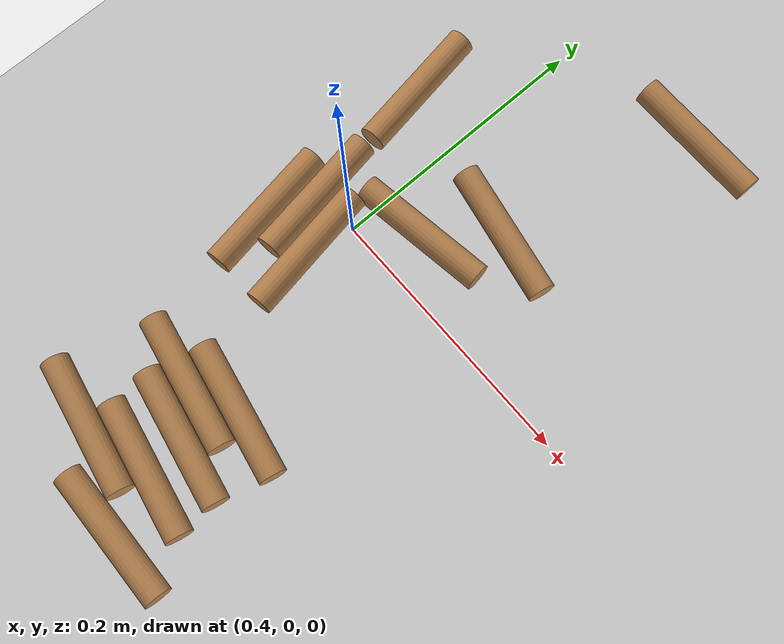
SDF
<sdf version="1.6">
 <world name="default">
  <light name="sun" type="directional">
   <pose>0 0 10 0 -0 0</pose>
   <diffuse>0.8 0.8 0.8 1</diffuse>
   <specular>0.2 0.2 0.2 1</specular>
   <attenuation>
    <range>1000</range>
    <constant>0.9</constant>
    <linear>0.01</linear>
    <quadratic>0.001</quadratic>
   </attenuation>
   <direction>-0.5 0.1 -0.9</direction>
  </light>
  <model name="ground_plane">
   <static>1</static>
   <link name="link">
    <collision name="collision">
     <geometry><plane><normal>0 0 1</normal><size>100 100</size></plane></geometry>
     <surface><friction><ode><mu>100</mu><mu2>50</mu2></ode></friction></surface>
    </collision>
    <visual name="visual">
     <cast_shadows>0</cast_shadows>
     <geometry><plane><normal>0 0 1</normal><size>100 100</size></plane></geometry>
     <material>
      <script><uri>file://media/materials/scripts/gazebo.material</uri><name>Gazebo/Grey</name></script>
     </material>
    </visual>
   </link>
  </model>
  <gravity>0 0 -9.8</gravity>
  <magnetic_field>6e-06 2.3e-05 -4.2e-05</magnetic_field>
  <atmosphere type="adiabatic"/>
  <physics name="default_physics" default="0" type="ode">
   <max_step_size>0.001</max_step_size>
   <real_time_factor>1</real_time_factor>
   <real_time_update_rate>1000</real_time_update_rate>
  </physics>
  <scene><ambient>0.4 0.4 0.4 1</ambient><background>0.7 0.7 0.7 1</background><shadows>1</shadows></scene>
  <audio><device>default</device></audio>
  <spherical_coordinates>
   <surface_model>EARTH_WGS84</surface_model>
   <latitude_deg>0</latitude_deg>
   <longitude_deg>0</longitude_deg>
   <elevation>0</elevation>
   <heading_deg>0</heading_deg>
  </spherical_coordinates>
  <model name="my wooden_peg">
   <link name="link">
    <pose>0 0 0.04 0 -0 0</pose>
    <inertial>
     <mass>0.0175</mass>
     <inertia>
      <ixx>9.74923e-06</ixx>
      <ixy>0</ixy>
      <ixz>0</ixz>
      <iyy>9.74923e-06</iyy>
      <iyz>0</iyz>
      <izz>8.31797e-07</izz>
     </inertia>
    </inertial>
    <collision name="collision">
     <geometry><cylinder><radius>0.01</radius><length>0.1</length></cylinder></geometry>
     <surface>
      <contact>
       <poissons_ratio>0.347</poissons_ratio>
       <elastic_modulus>8.8e+09</elastic_modulus>
       <ode><kp>100000</kp><kd>100</kd><max_vel>100</max_vel><min_depth>0.001</min_depth></ode>
      </contact>
      <friction>
       <torsional>
        <coefficient>1</coefficient>
        <use_patch_radius>0</use_patch_radius>
        <surface_radius>0.01</surface_radius>
       </torsional>
      </friction>
     </surface>
    </collision>
    <visual name="visual">
     <geometry><cylinder><radius>0.01</radius><length>0.1</length></cylinder></geometry>
     <material>
      <script><uri>file://media/materials/scripts/gazebo.material</uri><name>Gazebo/Wood</name></script>
     </material>
    </visual>
   </link>
   <pose>0.420257 -0.249869 0.014519 1.56971 -0.751768 1.54692</pose>
  </model>
  <model name="my wooden_peg_clone">
   <link name="link">
    <pose>0 0 0.04 0 -0 0</pose>
    <inertial>
     <mass>0.0175</mass>
     <inertia>
      <ixx>9.74923e-06</ixx>
      <ixy>0</ixy>
      <ixz>0</ixz>
      <iyy>9.74923e-06</iyy>
      <iyz>0</iyz>
      <izz>8.31797e-07</izz>
     </inertia>
    </inertial>
    <collision name="collision">
     <geometry><cylinder><radius>0.01</radius><length>0.1</length></cylinder></geometry>
     <surface>
      <contact>
       <poissons_ratio>0.347</poissons_ratio>
       <elastic_modulus>8.8e+09</elastic_modulus>
       <ode><kp>100000</kp><kd>100</kd><max_vel>100</max_vel><min_depth>0.001</min_depth></ode>
      </contact>
      <friction>
       <torsional>
        <coefficient>1</coefficient>
        <use_patch_radius>0</use_patch_radius>
        <surface_radius>0.01</surface_radius>
       </torsional>
      </friction>
     </surface>
    </collision>
    <visual name="visual">
     <geometry><cylinder><radius>0.01</radius><length>0.1</length></cylinder></geometry>
     <material>
      <script><uri>file://media/materials/scripts/gazebo.material</uri><name>Gazebo/Wood</name></script>
     </material>
    </visual>
   </link>
   <pose>0.401208 -0.202297 0.014504 -1.56269 1.47417 -1.75264</pose>
  </model>
  <model name="my wooden_peg_clone_clone">
   <link name="link">
    <pose>0 0 0.04 0 -0 0</pose>
    <inertial>
     <mass>0.0175</mass>
     <inertia>
      <ixx>9.74923e-06</ixx>
      <ixy>0</ixy>
      <ixz>0</ixz>
      <iyy>9.74923e-06</iyy>
      <iyz>0</iyz>
      <izz>8.31797e-07</izz>
     </inertia>
    </inertial>
    <collision name="collision">
     <geometry><cylinder><radius>0.01</radius><length>0.1</length></cylinder></geometry>
     <surface>
      <contact>
       <poissons_ratio>0.347</poissons_ratio>
       <elastic_modulus>8.8e+09</elastic_modulus>
       <ode><kp>100000</kp><kd>100</kd><max_vel>100</max_vel><min_depth>0.001</min_depth></ode>
      </contact>
      <friction>
       <torsional>
        <coefficient>1</coefficient>
        <use_patch_radius>0</use_patch_radius>
        <surface_radius>0.01</surface_radius>
       </torsional>
      </friction>
     </surface>
    </collision>
    <visual name="visual">
     <geometry><cylinder><radius>0.01</radius><length>0.1</length></cylinder></geometry>
     <material>
      <script><uri>file://media/materials/scripts/gazebo.material</uri><name>Gazebo/Wood</name></script>
     </material>
    </visual>
   </link>
   <pose>0.400234 -0.172101 0.014503 -1.56344 -1.46421 -1.76791</pose>
  </model>
  <model name="my wooden_peg_clone_clone_0">
   <link name="link">
    <pose>0 0 0.04 0 -0 0</pose>
    <inertial>
     <mass>0.0175</mass>
     <inertia>
      <ixx>9.74923e-06</ixx>
      <ixy>0</ixy>
      <ixz>0</ixz>
      <iyy>9.74923e-06</iyy>
      <iyz>0</iyz>
      <izz>8.31797e-07</izz>
     </inertia>
    </inertial>
    <collision name="collision">
     <geometry><cylinder><radius>0.01</radius><length>0.1</length></cylinder></geometry>
     <surface>
      <contact>
       <poissons_ratio>0.347</poissons_ratio>
       <elastic_modulus>8.8e+09</elastic_modulus>
       <ode><kp>100000</kp><kd>100</kd><max_vel>100</max_vel><min_depth>0.001</min_depth></ode>
      </contact>
      <friction>
       <torsional>
        <coefficient>1</coefficient>
        <use_patch_radius>0</use_patch_radius>
        <surface_radius>0.01</surface_radius>
       </torsional>
      </friction>
     </surface>
    </collision>
    <visual name="visual">
     <geometry><cylinder><radius>0.01</radius><length>0.1</length></cylinder></geometry>
     <material>
      <script><uri>file://media/materials/scripts/gazebo.material</uri><name>Gazebo/Wood</name></script>
     </material>
    </visual>
   </link>
   <pose>0.410776 -0.133406 0.014511 1.56931 1.01549 1.37993</pose>
  </model>
  <model name="my wooden_peg_clone_clone_1">
   <link name="link">
    <pose>0 0 0.04 0 -0 0</pose>
    <inertial>
     <mass>0.0175</mass>
     <inertia>
      <ixx>9.74923e-06</ixx>
      <ixy>0</ixy>
      <ixz>0</ixz>
      <iyy>9.74923e-06</iyy>
      <iyz>0</iyz>
      <izz>8.31797e-07</izz>
     </inertia>
    </inertial>
    <collision name="collision">
     <geometry><cylinder><radius>0.01</radius><length>0.1</length></cylinder></geometry>
     <surface>
      <contact>
       <poissons_ratio>0.347</poissons_ratio>
       <elastic_modulus>8.8e+09</elastic_modulus>
       <ode><kp>100000</kp><kd>100</kd><max_vel>100</max_vel><min_depth>0.001</min_depth></ode>
      </contact>
      <friction>
       <torsional>
        <coefficient>1</coefficient>
        <use_patch_radius>0</use_patch_radius>
        <surface_radius>0.01</surface_radius>
       </torsional>
      </friction>
     </surface>
    </collision>
    <visual name="visual">
     <geometry><cylinder><radius>0.01</radius><length>0.1</length></cylinder></geometry>
     <material>
      <script><uri>file://media/materials/scripts/gazebo.material</uri><name>Gazebo/Wood</name></script>
     </material>
    </visual>
   </link>
   <pose>0.434246 0.081595 0.01453 1.56385 1.45795 1.37332</pose>
  </model>
  <model name="my wooden_peg_clone_clone_2">
   <link name="link">
    <pose>0 0 0.04 0 -0 0</pose>
    <inertial>
     <mass>0.0175</mass>
     <inertia>
      <ixx>9.74923e-06</ixx>
      <ixy>0</ixy>
      <ixz>0</ixz>
      <iyy>9.74923e-06</iyy>
      <iyz>0</iyz>
      <izz>8.31797e-07</izz>
     </inertia>
    </inertial>
    <collision name="collision">
     <geometry><cylinder><radius>0.01</radius><length>0.1</length></cylinder></geometry>
     <surface>
      <contact>
       <poissons_ratio>0.347</poissons_ratio>
       <elastic_modulus>8.8e+09</elastic_modulus>
       <ode><kp>100000</kp><kd>100</kd><max_vel>100</max_vel><min_depth>0.001</min_depth></ode>
      </contact>
      <friction>
       <torsional>
        <coefficient>1</coefficient>
        <use_patch_radius>0</use_patch_radius>
        <surface_radius>0.01</surface_radius>
       </torsional>
      </friction>
     </surface>
    </collision>
    <visual name="visual">
     <geometry><cylinder><radius>0.01</radius><length>0.1</length></cylinder></geometry>
     <material>
      <script><uri>file://media/materials/scripts/gazebo.material</uri><name>Gazebo/Wood</name></script>
     </material>
    </visual>
   </link>
   <pose>0.374019 -0.146704 0.014482 -1.56974 -0.742298 -1.76119</pose>
  </model>
  <model name="my wooden_peg_clone_clone_3">
   <link name="link">
    <pose>0 0 0.04 0 -0 0</pose>
    <inertial>
     <mass>0.0175</mass>
     <inertia>
      <ixx>9.74923e-06</ixx>
      <ixy>0</ixy>
      <ixz>0</ixz>
      <iyy>9.74923e-06</iyy>
      <iyz>0</iyz>
      <izz>8.31797e-07</izz>
     </inertia>
    </inertial>
    <collision name="collision">
     <geometry><cylinder><radius>0.01</radius><length>0.1</length></cylinder></geometry>
     <surface>
      <contact>
       <poissons_ratio>0.347</poissons_ratio>
       <elastic_modulus>8.8e+09</elastic_modulus>
       <ode><kp>100000</kp><kd>100</kd><max_vel>100</max_vel><min_depth>0.001</min_depth></ode>
      </contact>
      <friction>
       <torsional>
        <coefficient>1</coefficient>
        <use_patch_radius>0</use_patch_radius>
        <surface_radius>0.01</surface_radius>
       </torsional>
      </friction>
     </surface>
    </collision>
    <visual name="visual">
     <geometry><cylinder><radius>0.01</radius><length>0.1</length></cylinder></geometry>
     <material>
      <script><uri>file://media/materials/scripts/gazebo.material</uri><name>Gazebo/Wood</name></script>
     </material>
    </visual>
   </link>
   <pose>0.360067 -0.077262 0.014152 1.57147 -1.37795 -2.98137</pose>
  </model>
  <model name="my wooden_peg_clone_clone_4">
   <link name="link">
    <pose>0 0 0.04 0 -0 0</pose>
    <inertial>
     <mass>0.0175</mass>
     <inertia>
      <ixx>9.74923e-06</ixx>
      <ixy>0</ixy>
      <ixz>0</ixz>
      <iyy>9.74923e-06</iyy>
      <iyz>0</iyz>
      <izz>8.31797e-07</izz>
     </inertia>
    </inertial>
    <collision name="collision">
     <geometry><cylinder><radius>0.01</radius><length>0.1</length></cylinder></geometry>
     <surface>
      <contact>
       <poissons_ratio>0.347</poissons_ratio>
       <elastic_modulus>8.8e+09</elastic_modulus>
       <ode><kp>100000</kp><kd>100</kd><max_vel>100</max_vel><min_depth>0.001</min_depth></ode>
      </contact>
      <friction>
       <torsional>
        <coefficient>1</coefficient>
        <use_patch_radius>0</use_patch_radius>
        <surface_radius>0.01</surface_radius>
       </torsional>
      </friction>
     </surface>
    </collision>
    <visual name="visual">
     <geometry><cylinder><radius>0.01</radius><length>0.1</length></cylinder></geometry>
     <material>
      <script><uri>file://media/materials/scripts/gazebo.material</uri><name>Gazebo/Wood</name></script>
     </material>
    </visual>
   </link>
   <pose>0.476432 0.037694 0.015034 -1.57769 -0.516151 1.72107</pose>
  </model>
  <model name="my wooden_peg_clone_clone_5">
   <link name="link">
    <pose>0 0 0.04 0 -0 0</pose>
    <inertial>
     <mass>0.0175</mass>
     <inertia>
      <ixx>9.74923e-06</ixx>
      <ixy>0</ixy>
      <ixz>0</ixz>
      <iyy>9.74923e-06</iyy>
      <iyz>0</iyz>
      <izz>8.31797e-07</izz>
     </inertia>
    </inertial>
    <collision name="collision">
     <geometry><cylinder><radius>0.01</radius><length>0.1</length></cylinder></geometry>
     <surface>
      <contact>
       <poissons_ratio>0.347</poissons_ratio>
       <elastic_modulus>8.8e+09</elastic_modulus>
       <ode><kp>100000</kp><kd>100</kd><max_vel>100</max_vel><min_depth>0.001</min_depth></ode>
      </contact>
      <friction>
       <torsional>
        <coefficient>1</coefficient>
        <use_patch_radius>0</use_patch_radius>
        <surface_radius>0.01</surface_radius>
       </torsional>
      </friction>
     </surface>
    </collision>
    <visual name="visual">
     <geometry><cylinder><radius>0.01</radius><length>0.1</length></cylinder></geometry>
     <material>
      <script><uri>file://media/materials/scripts/gazebo.material</uri><name>Gazebo/Wood</name></script>
     </material>
    </visual>
   </link>
   <pose>0.353945 -0.213586 0.014466 -1.56907 1.10025 -1.75879</pose>
  </model>
  <model name="my wooden_peg_clone_clone_3_clone">
   <link name="link">
    <pose>0 0 0.04 0 -0 0</pose>
    <inertial>
     <mass>0.0175</mass>
     <inertia>
      <ixx>9.74923e-06</ixx>
      <ixy>0</ixy>
      <ixz>0</ixz>
      <iyy>9.74923e-06</iyy>
      <iyz>0</iyz>
      <izz>8.31797e-07</izz>
     </inertia>
    </inertial>
    <collision name="collision">
     <geometry><cylinder><radius>0.01</radius><length>0.1</length></cylinder></geometry>
     <surface>
      <contact>
       <poissons_ratio>0.347</poissons_ratio>
       <elastic_modulus>8.8e+09</elastic_modulus>
       <ode><kp>100000</kp><kd>100</kd><max_vel>100</max_vel><min_depth>0.001</min_depth></ode>
      </contact>
      <friction>
       <torsional>
        <coefficient>1</coefficient>
        <use_patch_radius>0</use_patch_radius>
        <surface_radius>0.01</surface_radius>
       </torsional>
      </friction>
     </surface>
    </collision>
    <visual name="visual">
     <geometry><cylinder><radius>0.01</radius><length>0.1</length></cylinder></geometry>
     <material>
      <script><uri>file://media/materials/scripts/gazebo.material</uri><name>Gazebo/Wood</name></script>
     </material>
    </visual>
   </link>
   <pose>0.37507 -0.044873 0.014483 1.57116 -1.21077 -2.98108</pose>
  </model>
  <model name="my wooden_peg_clone_clone_3_clone_0">
   <link name="link">
    <pose>0 0 0.04 0 -0 0</pose>
    <inertial>
     <mass>0.0175</mass>
     <inertia>
      <ixx>9.74923e-06</ixx>
      <ixy>0</ixy>
      <ixz>0</ixz>
      <iyy>9.74923e-06</iyy>
      <iyz>0</iyz>
      <izz>8.31797e-07</izz>
     </inertia>
    </inertial>
    <collision name="collision">
     <geometry><cylinder><radius>0.01</radius><length>0.1</length></cylinder></geometry>
     <surface>
      <contact>
       <poissons_ratio>0.347</poissons_ratio>
       <elastic_modulus>8.8e+09</elastic_modulus>
       <ode><kp>100000</kp><kd>100</kd><max_vel>100</max_vel><min_depth>0.001</min_depth></ode>
      </contact>
      <friction>
       <torsional>
        <coefficient>1</coefficient>
        <use_patch_radius>0</use_patch_radius>
        <surface_radius>0.01</surface_radius>
       </torsional>
      </friction>
     </surface>
    </collision>
    <visual name="visual">
     <geometry><cylinder><radius>0.01</radius><length>0.1</length></cylinder></geometry>
     <material>
      <script><uri>file://media/materials/scripts/gazebo.material</uri><name>Gazebo/Wood</name></script>
     </material>
    </visual>
   </link>
   <pose>0.400685 -0.074778 0.014503 1.57106 1.03877 -2.97483</pose>
  </model>
  <model name="my wooden_peg_clone_clone_3_clone_1">
   <link name="link">
    <pose>0 0 0.04 0 -0 0</pose>
    <inertial>
     <mass>0.0175</mass>
     <inertia>
      <ixx>9.74923e-06</ixx>
      <ixy>0</ixy>
      <ixz>0</ixz>
      <iyy>9.74923e-06</iyy>
      <iyz>0</iyz>
      <izz>8.31797e-07</izz>
     </inertia>
    </inertial>
    <collision name="collision">
     <geometry><cylinder><radius>0.01</radius><length>0.1</length></cylinder></geometry>
     <surface>
      <contact>
       <poissons_ratio>0.347</poissons_ratio>
       <elastic_modulus>8.8e+09</elastic_modulus>
       <ode><kp>100000</kp><kd>100</kd><max_vel>100</max_vel><min_depth>0.001</min_depth></ode>
      </contact>
      <friction>
       <torsional>
        <coefficient>1</coefficient>
        <use_patch_radius>0</use_patch_radius>
        <surface_radius>0.01</surface_radius>
       </torsional>
      </friction>
     </surface>
    </collision>
    <visual name="visual">
     <geometry><cylinder><radius>0.01</radius><length>0.1</length></cylinder></geometry>
     <material>
      <script><uri>file://media/materials/scripts/gazebo.material</uri><name>Gazebo/Wood</name></script>
     </material>
    </visual>
   </link>
   <pose>0.360253 0.061092 0.014471 1.57096 0.648614 -2.98087</pose>
  </model>
  <model name="my wooden_peg_clone_clone_3_clone_2">
   <link name="link">
    <pose>0 0 0.04 0 -0 0</pose>
    <inertial>
     <mass>0.0175</mass>
     <inertia>
      <ixx>9.74923e-06</ixx>
      <ixy>0</ixy>
      <ixz>0</ixz>
      <iyy>9.74923e-06</iyy>
      <iyz>0</iyz>
      <izz>8.31797e-07</izz>
     </inertia>
    </inertial>
    <collision name="collision">
     <geometry><cylinder><radius>0.01</radius><length>0.1</length></cylinder></geometry>
     <surface>
      <contact>
       <poissons_ratio>0.347</poissons_ratio>
       <elastic_modulus>8.8e+09</elastic_modulus>
       <ode><kp>100000</kp><kd>100</kd><max_vel>100</max_vel><min_depth>0.001</min_depth></ode>
      </contact>
      <friction>
       <torsional>
        <coefficient>1</coefficient>
        <use_patch_radius>0</use_patch_radius>
        <surface_radius>0.01</surface_radius>
       </torsional>
      </friction>
     </surface>
    </collision>
    <visual name="visual">
     <geometry><cylinder><radius>0.01</radius><length>0.1</length></cylinder></geometry>
     <material>
      <script><uri>file://media/materials/scripts/gazebo.material</uri><name>Gazebo/Wood</name></script>
     </material>
    </visual>
   </link>
   <pose>0.551748 0.223861 0.014766 1.57439 -0.846481 -1.57427</pose>
  </model>
 </world>
</sdf>
